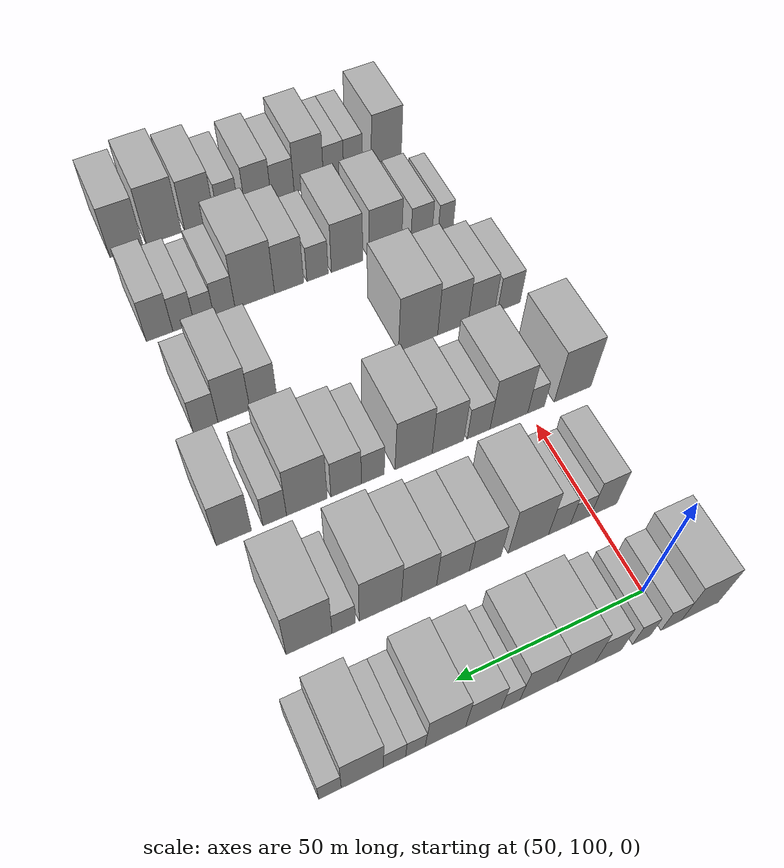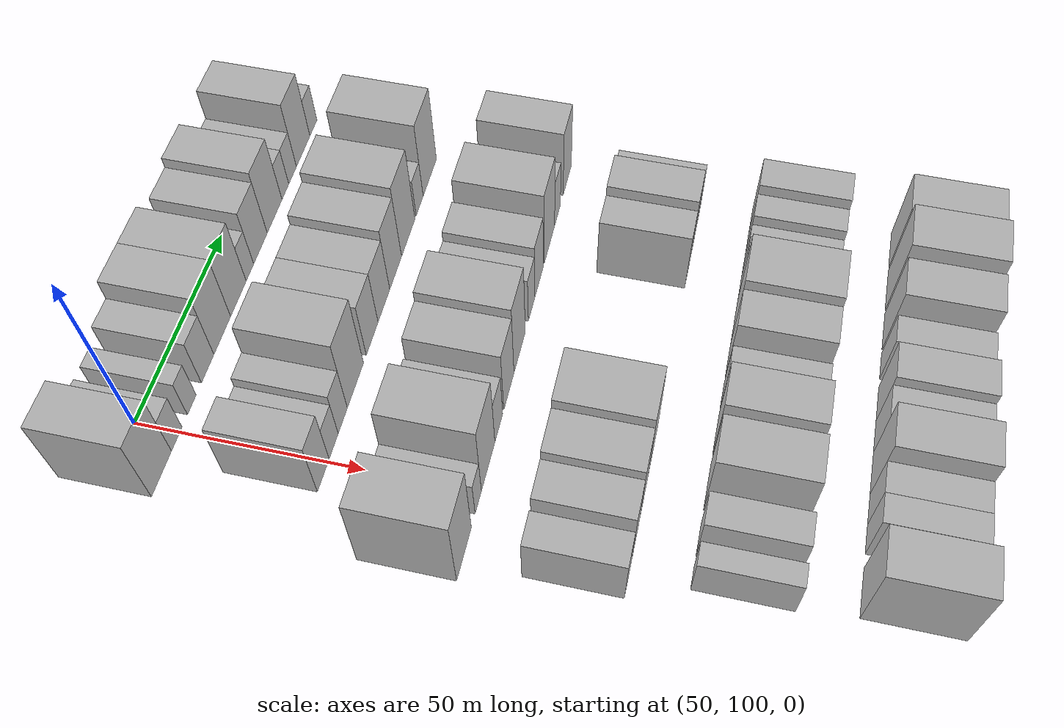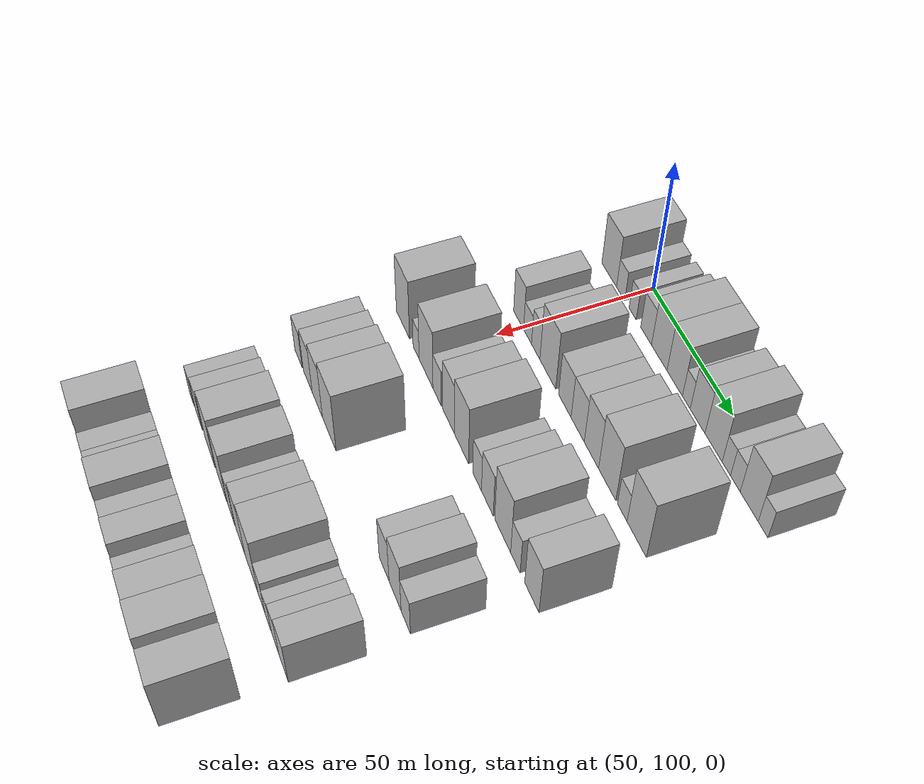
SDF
<sdf version="1.6">
 <world name="default">
  <model name="building_77">
   <static>1</static>
   <pose>50.0000 90.3313 0 0.000000 0.000000 0.000000</pose>
   <link name="link">
    <pose>0 0 10.50 0 0 0</pose>
    <collision name="collision"><geometry><box><size>20.0000 10.4453 21.0000</size></box></geometry></collision>
    <visual name="visual">
     <cast_shadows>0</cast_shadows>
     <geometry><box><size>20.0000 10.4453 21.0000</size></box></geometry>
     <material>
      <script>
       <uri>model://HANNAS_wall/materials/scripts</uri>
       <uri>model://HANNAS_wall/materials/textures</uri>
       <name>vrc/HANNAS_wall</name>
      </script>
     </material>
    </visual>
   </link>
  </model>
  <model name="building_78">
   <static>1</static>
   <pose>50.0000 98.3901 0 0.000000 0.000000 0.000000</pose>
   <link name="link">
    <pose>0 0 6.00 0 0 0</pose>
    <collision name="collision"><geometry><box><size>20.0000 5.6723 12.0000</size></box></geometry></collision>
    <visual name="visual">
     <cast_shadows>0</cast_shadows>
     <geometry><box><size>20.0000 5.6723 12.0000</size></box></geometry>
     <material>
      <script>
       <uri>model://HANNAS_wall/materials/scripts</uri>
       <uri>model://HANNAS_wall/materials/textures</uri>
       <name>vrc/HANNAS_wall</name>
      </script>
     </material>
    </visual>
   </link>
  </model>
  <model name="building_79">
   <static>1</static>
   <pose>50.0000 106.6499 0 0.000000 0.000000 0.000000</pose>
   <link name="link">
    <pose>0 0 6.00 0 0 0</pose>
    <collision name="collision"><geometry><box><size>20.0000 4.8474 12.0000</size></box></geometry></collision>
    <visual name="visual">
     <cast_shadows>0</cast_shadows>
     <geometry><box><size>20.0000 4.8474 12.0000</size></box></geometry>
     <material>
      <script>
       <uri>model://HANNAS_wall/materials/scripts</uri>
       <uri>model://HANNAS_wall/materials/textures</uri>
       <name>vrc/HANNAS_wall</name>
      </script>
     </material>
    </visual>
   </link>
  </model>
  <model name="building_80">
   <static>1</static>
   <pose>50.0000 115.6817 0 0.000000 0.000000 0.000000</pose>
   <link name="link">
    <pose>0 0 7.50 0 0 0</pose>
    <collision name="collision"><geometry><box><size>20.0000 7.2161 15.0000</size></box></geometry></collision>
    <visual name="visual">
     <cast_shadows>0</cast_shadows>
     <geometry><box><size>20.0000 7.2161 15.0000</size></box></geometry>
     <material>
      <script>
       <uri>model://HANNAS_wall/materials/scripts</uri>
       <uri>model://HANNAS_wall/materials/textures</uri>
       <name>vrc/HANNAS_wall</name>
      </script>
     </material>
    </visual>
   </link>
  </model>
  <model name="building_81">
   <static>1</static>
   <pose>50.0000 124.3143 0 0.000000 0.000000 0.000000</pose>
   <link name="link">
    <pose>0 0 10.50 0 0 0</pose>
    <collision name="collision"><geometry><box><size>20.0000 10.0491 21.0000</size></box></geometry></collision>
    <visual name="visual">
     <cast_shadows>0</cast_shadows>
     <geometry><box><size>20.0000 10.0491 21.0000</size></box></geometry>
     <material>
      <script>
       <uri>model://HANNAS_wall/materials/scripts</uri>
       <uri>model://HANNAS_wall/materials/textures</uri>
       <name>vrc/HANNAS_wall</name>
      </script>
     </material>
    </visual>
   </link>
  </model>
  <model name="building_82">
   <static>1</static>
   <pose>50.0000 134.2049 0 0.000000 0.000000 0.000000</pose>
   <link name="link">
    <pose>0 0 10.50 0 0 0</pose>
    <collision name="collision"><geometry><box><size>20.0000 9.7322 21.0000</size></box></geometry></collision>
    <visual name="visual">
     <cast_shadows>0</cast_shadows>
     <geometry><box><size>20.0000 9.7322 21.0000</size></box></geometry>
     <material>
      <script>
       <uri>model://HANNAS_wall/materials/scripts</uri>
       <uri>model://HANNAS_wall/materials/textures</uri>
       <name>vrc/HANNAS_wall</name>
      </script>
     </material>
    </visual>
   </link>
  </model>
  <model name="building_83">
   <static>1</static>
   <pose>50.0000 141.4858 0 0.000000 0.000000 0.000000</pose>
   <link name="link">
    <pose>0 0 6.00 0 0 0</pose>
    <collision name="collision"><geometry><box><size>20.0000 4.8296 12.0000</size></box></geometry></collision>
    <visual name="visual">
     <cast_shadows>0</cast_shadows>
     <geometry><box><size>20.0000 4.8296 12.0000</size></box></geometry>
     <material>
      <script>
       <uri>model://HANNAS_wall/materials/scripts</uri>
       <uri>model://HANNAS_wall/materials/textures</uri>
       <name>vrc/HANNAS_wall</name>
      </script>
     </material>
    </visual>
   </link>
  </model>
  <model name="building_84">
   <static>1</static>
   <pose>50.0000 148.3853 0 0.000000 0.000000 0.000000</pose>
   <link name="link">
    <pose>0 0 9.00 0 0 0</pose>
    <collision name="collision"><geometry><box><size>20.0000 8.9695 18.0000</size></box></geometry></collision>
    <visual name="visual">
     <cast_shadows>0</cast_shadows>
     <geometry><box><size>20.0000 8.9695 18.0000</size></box></geometry>
     <material>
      <script>
       <uri>model://HANNAS_wall/materials/scripts</uri>
       <uri>model://HANNAS_wall/materials/textures</uri>
       <name>vrc/HANNAS_wall</name>
      </script>
     </material>
    </visual>
   </link>
  </model>
  <model name="building_85">
   <static>1</static>
   <pose>50.0000 157.9243 0 0.000000 0.000000 0.000000</pose>
   <link name="link">
    <pose>0 0 10.50 0 0 0</pose>
    <collision name="collision"><geometry><box><size>20.0000 10.1083 21.0000</size></box></geometry></collision>
    <visual name="visual">
     <cast_shadows>0</cast_shadows>
     <geometry><box><size>20.0000 10.1083 21.0000</size></box></geometry>
     <material>
      <script>
       <uri>model://HANNAS_wall/materials/scripts</uri>
       <uri>model://HANNAS_wall/materials/textures</uri>
       <name>vrc/HANNAS_wall</name>
      </script>
     </material>
    </visual>
   </link>
  </model>
  <model name="building_86">
   <static>1</static>
   <pose>50.0000 165.3802 0 0.000000 0.000000 0.000000</pose>
   <link name="link">
    <pose>0 0 6.00 0 0 0</pose>
    <collision name="collision"><geometry><box><size>20.0000 4.8035 12.0000</size></box></geometry></collision>
    <visual name="visual">
     <cast_shadows>0</cast_shadows>
     <geometry><box><size>20.0000 4.8035 12.0000</size></box></geometry>
     <material>
      <script>
       <uri>model://HANNAS_wall/materials/scripts</uri>
       <uri>model://HANNAS_wall/materials/textures</uri>
       <name>vrc/HANNAS_wall</name>
      </script>
     </material>
    </visual>
   </link>
  </model>
  <model name="building_87">
   <static>1</static>
   <pose>50.0000 170.5307 0 0.000000 0.000000 0.000000</pose>
   <link name="link">
    <pose>0 0 6.00 0 0 0</pose>
    <collision name="collision"><geometry><box><size>20.0000 5.4974 12.0000</size></box></geometry></collision>
    <visual name="visual">
     <cast_shadows>0</cast_shadows>
     <geometry><box><size>20.0000 5.4974 12.0000</size></box></geometry>
     <material>
      <script>
       <uri>model://HANNAS_wall/materials/scripts</uri>
       <uri>model://HANNAS_wall/materials/textures</uri>
       <name>vrc/HANNAS_wall</name>
      </script>
     </material>
    </visual>
   </link>
  </model>
  <model name="building_88">
   <static>1</static>
   <pose>50.0000 178.2708 0 0.000000 0.000000 0.000000</pose>
   <link name="link">
    <pose>0 0 10.50 0 0 0</pose>
    <collision name="collision"><geometry><box><size>20.0000 9.9829 21.0000</size></box></geometry></collision>
    <visual name="visual">
     <cast_shadows>0</cast_shadows>
     <geometry><box><size>20.0000 9.9829 21.0000</size></box></geometry>
     <material>
      <script>
       <uri>model://HANNAS_wall/materials/scripts</uri>
       <uri>model://HANNAS_wall/materials/textures</uri>
       <name>vrc/HANNAS_wall</name>
      </script>
     </material>
    </visual>
   </link>
  </model>
  <model name="building_89">
   <static>1</static>
   <pose>50.0000 185.9252 0 0.000000 0.000000 0.000000</pose>
   <link name="link">
    <pose>0 0 6.00 0 0 0</pose>
    <collision name="collision"><geometry><box><size>20.0000 5.3258 12.0000</size></box></geometry></collision>
    <visual name="visual">
     <cast_shadows>0</cast_shadows>
     <geometry><box><size>20.0000 5.3258 12.0000</size></box></geometry>
     <material>
      <script>
       <uri>model://HANNAS_wall/materials/scripts</uri>
       <uri>model://HANNAS_wall/materials/textures</uri>
       <name>vrc/HANNAS_wall</name>
      </script>
     </material>
    </visual>
   </link>
  </model>
  <model name="building_206">
   <static>1</static>
   <pose>82.0000 97.0718 0 0.000000 0.000000 0.000000</pose>
   <link name="link">
    <pose>0 0 9.00 0 0 0</pose>
    <collision name="collision"><geometry><box><size>20.0000 7.5172 18.0000</size></box></geometry></collision>
    <visual name="visual">
     <cast_shadows>0</cast_shadows>
     <geometry><box><size>20.0000 7.5172 18.0000</size></box></geometry>
     <material>
      <script>
       <uri>model://HANNAS_wall/materials/scripts</uri>
       <uri>model://HANNAS_wall/materials/textures</uri>
       <name>vrc/HANNAS_wall</name>
      </script>
     </material>
    </visual>
   </link>
  </model>
  <model name="building_207">
   <static>1</static>
   <pose>82.0000 103.8005 0 0.000000 0.000000 0.000000</pose>
   <link name="link">
    <pose>0 0 6.00 0 0 0</pose>
    <collision name="collision"><geometry><box><size>20.0000 5.9404 12.0000</size></box></geometry></collision>
    <visual name="visual">
     <cast_shadows>0</cast_shadows>
     <geometry><box><size>20.0000 5.9404 12.0000</size></box></geometry>
     <material>
      <script>
       <uri>model://HANNAS_wall/materials/scripts</uri>
       <uri>model://HANNAS_wall/materials/textures</uri>
       <name>vrc/HANNAS_wall</name>
      </script>
     </material>
    </visual>
   </link>
  </model>
  <model name="building_208">
   <static>1</static>
   <pose>82.0000 109.8524 0 0.000000 0.000000 0.000000</pose>
   <link name="link">
    <pose>0 0 7.50 0 0 0</pose>
    <collision name="collision"><geometry><box><size>20.0000 6.1634 15.0000</size></box></geometry></collision>
    <visual name="visual">
     <cast_shadows>0</cast_shadows>
     <geometry><box><size>20.0000 6.1634 15.0000</size></box></geometry>
     <material>
      <script>
       <uri>model://HANNAS_wall/materials/scripts</uri>
       <uri>model://HANNAS_wall/materials/textures</uri>
       <name>vrc/HANNAS_wall</name>
      </script>
     </material>
    </visual>
   </link>
  </model>
  <model name="building_209">
   <static>1</static>
   <pose>82.0000 118.5898 0 0.000000 0.000000 0.000000</pose>
   <link name="link">
    <pose>0 0 12.00 0 0 0</pose>
    <collision name="collision"><geometry><box><size>20.0000 11.3113 24.0000</size></box></geometry></collision>
    <visual name="visual">
     <cast_shadows>0</cast_shadows>
     <geometry><box><size>20.0000 11.3113 24.0000</size></box></geometry>
     <material>
      <script>
       <uri>model://HANNAS_wall/materials/scripts</uri>
       <uri>model://HANNAS_wall/materials/textures</uri>
       <name>vrc/HANNAS_wall</name>
      </script>
     </material>
    </visual>
   </link>
  </model>
  <model name="building_210">
   <static>1</static>
   <pose>82.0000 130.5732 0 0.000000 0.000000 0.000000</pose>
   <link name="link">
    <pose>0 0 9.00 0 0 0</pose>
    <collision name="collision"><geometry><box><size>20.0000 8.6554 18.0000</size></box></geometry></collision>
    <visual name="visual">
     <cast_shadows>0</cast_shadows>
     <geometry><box><size>20.0000 8.6554 18.0000</size></box></geometry>
     <material>
      <script>
       <uri>model://HANNAS_wall/materials/scripts</uri>
       <uri>model://HANNAS_wall/materials/textures</uri>
       <name>vrc/HANNAS_wall</name>
      </script>
     </material>
    </visual>
   </link>
  </model>
  <model name="building_211">
   <static>1</static>
   <pose>82.0000 139.3551 0 0.000000 0.000000 0.000000</pose>
   <link name="link">
    <pose>0 0 9.00 0 0 0</pose>
    <collision name="collision"><geometry><box><size>20.0000 8.9084 18.0000</size></box></geometry></collision>
    <visual name="visual">
     <cast_shadows>0</cast_shadows>
     <geometry><box><size>20.0000 8.9084 18.0000</size></box></geometry>
     <material>
      <script>
       <uri>model://HANNAS_wall/materials/scripts</uri>
       <uri>model://HANNAS_wall/materials/textures</uri>
       <name>vrc/HANNAS_wall</name>
      </script>
     </material>
    </visual>
   </link>
  </model>
  <model name="building_212">
   <static>1</static>
   <pose>82.0000 148.4932 0 0.000000 0.000000 0.000000</pose>
   <link name="link">
    <pose>0 0 10.50 0 0 0</pose>
    <collision name="collision"><geometry><box><size>20.0000 9.3679 21.0000</size></box></geometry></collision>
    <visual name="visual">
     <cast_shadows>0</cast_shadows>
     <geometry><box><size>20.0000 9.3679 21.0000</size></box></geometry>
     <material>
      <script>
       <uri>model://HANNAS_wall/materials/scripts</uri>
       <uri>model://HANNAS_wall/materials/textures</uri>
       <name>vrc/HANNAS_wall</name>
      </script>
     </material>
    </visual>
   </link>
  </model>
  <model name="building_213">
   <static>1</static>
   <pose>82.0000 158.6790 0 0.000000 0.000000 0.000000</pose>
   <link name="link">
    <pose>0 0 12.00 0 0 0</pose>
    <collision name="collision"><geometry><box><size>20.0000 11.0038 24.0000</size></box></geometry></collision>
    <visual name="visual">
     <cast_shadows>0</cast_shadows>
     <geometry><box><size>20.0000 11.0038 24.0000</size></box></geometry>
     <material>
      <script>
       <uri>model://HANNAS_wall/materials/scripts</uri>
       <uri>model://HANNAS_wall/materials/textures</uri>
       <name>vrc/HANNAS_wall</name>
      </script>
     </material>
    </visual>
   </link>
  </model>
  <model name="building_214">
   <static>1</static>
   <pose>82.0000 168.1587 0 0.000000 0.000000 0.000000</pose>
   <link name="link">
    <pose>0 0 6.00 0 0 0</pose>
    <collision name="collision"><geometry><box><size>20.0000 5.9555 12.0000</size></box></geometry></collision>
    <visual name="visual">
     <cast_shadows>0</cast_shadows>
     <geometry><box><size>20.0000 5.9555 12.0000</size></box></geometry>
     <material>
      <script>
       <uri>model://HANNAS_wall/materials/scripts</uri>
       <uri>model://HANNAS_wall/materials/textures</uri>
       <name>vrc/HANNAS_wall</name>
      </script>
     </material>
    </visual>
   </link>
  </model>
  <model name="building_215">
   <static>1</static>
   <pose>82.0000 176.9560 0 0.000000 0.000000 0.000000</pose>
   <link name="link">
    <pose>0 0 12.00 0 0 0</pose>
    <collision name="collision"><geometry><box><size>20.0000 11.6392 24.0000</size></box></geometry></collision>
    <visual name="visual">
     <cast_shadows>0</cast_shadows>
     <geometry><box><size>20.0000 11.6392 24.0000</size></box></geometry>
     <material>
      <script>
       <uri>model://HANNAS_wall/materials/scripts</uri>
       <uri>model://HANNAS_wall/materials/textures</uri>
       <name>vrc/HANNAS_wall</name>
      </script>
     </material>
    </visual>
   </link>
  </model>
  <model name="building_332">
   <static>1</static>
   <pose>114.0000 86.9081 0 0.000000 0.000000 0.000000</pose>
   <link name="link">
    <pose>0 0 12.00 0 0 0</pose>
    <collision name="collision"><geometry><box><size>20.0000 11.2672 24.0000</size></box></geometry></collision>
    <visual name="visual">
     <cast_shadows>0</cast_shadows>
     <geometry><box><size>20.0000 11.2672 24.0000</size></box></geometry>
     <material>
      <script>
       <uri>model://HANNAS_wall/materials/scripts</uri>
       <uri>model://HANNAS_wall/materials/textures</uri>
       <name>vrc/HANNAS_wall</name>
      </script>
     </material>
    </visual>
   </link>
  </model>
  <model name="building_333">
   <static>1</static>
   <pose>114.0000 98.0637 0 0.000000 0.000000 0.000000</pose>
   <link name="link">
    <pose>0 0 6.00 0 0 0</pose>
    <collision name="collision"><geometry><box><size>20.0000 5.0442 12.0000</size></box></geometry></collision>
    <visual name="visual">
     <cast_shadows>0</cast_shadows>
     <geometry><box><size>20.0000 5.0442 12.0000</size></box></geometry>
     <material>
      <script>
       <uri>model://HANNAS_wall/materials/scripts</uri>
       <uri>model://HANNAS_wall/materials/textures</uri>
       <name>vrc/HANNAS_wall</name>
      </script>
     </material>
    </visual>
   </link>
  </model>
  <model name="building_334">
   <static>1</static>
   <pose>114.0000 106.2054 0 0.000000 0.000000 0.000000</pose>
   <link name="link">
    <pose>0 0 12.00 0 0 0</pose>
    <collision name="collision"><geometry><box><size>20.0000 11.2392 24.0000</size></box></geometry></collision>
    <visual name="visual">
     <cast_shadows>0</cast_shadows>
     <geometry><box><size>20.0000 11.2392 24.0000</size></box></geometry>
     <material>
      <script>
       <uri>model://HANNAS_wall/materials/scripts</uri>
       <uri>model://HANNAS_wall/materials/textures</uri>
       <name>vrc/HANNAS_wall</name>
      </script>
     </material>
    </visual>
   </link>
  </model>
  <model name="building_335">
   <static>1</static>
   <pose>114.0000 115.1809 0 0.000000 0.000000 0.000000</pose>
   <link name="link">
    <pose>0 0 7.50 0 0 0</pose>
    <collision name="collision"><geometry><box><size>20.0000 6.7119 15.0000</size></box></geometry></collision>
    <visual name="visual">
     <cast_shadows>0</cast_shadows>
     <geometry><box><size>20.0000 6.7119 15.0000</size></box></geometry>
     <material>
      <script>
       <uri>model://HANNAS_wall/materials/scripts</uri>
       <uri>model://HANNAS_wall/materials/textures</uri>
       <name>vrc/HANNAS_wall</name>
      </script>
     </material>
    </visual>
   </link>
  </model>
  <model name="building_336">
   <static>1</static>
   <pose>114.0000 124.1312 0 0.000000 0.000000 0.000000</pose>
   <link name="link">
    <pose>0 0 10.50 0 0 0</pose>
    <collision name="collision"><geometry><box><size>20.0000 9.1886 21.0000</size></box></geometry></collision>
    <visual name="visual">
     <cast_shadows>0</cast_shadows>
     <geometry><box><size>20.0000 9.1886 21.0000</size></box></geometry>
     <material>
      <script>
       <uri>model://HANNAS_wall/materials/scripts</uri>
       <uri>model://HANNAS_wall/materials/textures</uri>
       <name>vrc/HANNAS_wall</name>
      </script>
     </material>
    </visual>
   </link>
  </model>
  <model name="building_337">
   <static>1</static>
   <pose>114.0000 134.0255 0 0.000000 0.000000 0.000000</pose>
   <link name="link">
    <pose>0 0 12.00 0 0 0</pose>
    <collision name="collision"><geometry><box><size>20.0000 10.6000 24.0000</size></box></geometry></collision>
    <visual name="visual">
     <cast_shadows>0</cast_shadows>
     <geometry><box><size>20.0000 10.6000 24.0000</size></box></geometry>
     <material>
      <script>
       <uri>model://HANNAS_wall/materials/scripts</uri>
       <uri>model://HANNAS_wall/materials/textures</uri>
       <name>vrc/HANNAS_wall</name>
      </script>
     </material>
    </visual>
   </link>
  </model>
  <model name="building_338">
   <static>1</static>
   <pose>114.0000 145.5345 0 0.000000 0.000000 0.000000</pose>
   <link name="link">
    <pose>0 0 7.50 0 0 0</pose>
    <collision name="collision"><geometry><box><size>20.0000 6.4181 15.0000</size></box></geometry></collision>
    <visual name="visual">
     <cast_shadows>0</cast_shadows>
     <geometry><box><size>20.0000 6.4181 15.0000</size></box></geometry>
     <material>
      <script>
       <uri>model://HANNAS_wall/materials/scripts</uri>
       <uri>model://HANNAS_wall/materials/textures</uri>
       <name>vrc/HANNAS_wall</name>
      </script>
     </material>
    </visual>
   </link>
  </model>
  <model name="building_339">
   <static>1</static>
   <pose>114.0000 152.9391 0 0.000000 0.000000 0.000000</pose>
   <link name="link">
    <pose>0 0 9.00 0 0 0</pose>
    <collision name="collision"><geometry><box><size>20.0000 8.3911 18.0000</size></box></geometry></collision>
    <visual name="visual">
     <cast_shadows>0</cast_shadows>
     <geometry><box><size>20.0000 8.3911 18.0000</size></box></geometry>
     <material>
      <script>
       <uri>model://HANNAS_wall/materials/scripts</uri>
       <uri>model://HANNAS_wall/materials/textures</uri>
       <name>vrc/HANNAS_wall</name>
      </script>
     </material>
    </visual>
   </link>
  </model>
  <model name="building_340">
   <static>1</static>
   <pose>114.0000 163.6487 0 0.000000 0.000000 0.000000</pose>
   <link name="link">
    <pose>0 0 12.00 0 0 0</pose>
    <collision name="collision"><geometry><box><size>20.0000 11.0280 24.0000</size></box></geometry></collision>
    <visual name="visual">
     <cast_shadows>0</cast_shadows>
     <geometry><box><size>20.0000 11.0280 24.0000</size></box></geometry>
     <material>
      <script>
       <uri>model://HANNAS_wall/materials/scripts</uri>
       <uri>model://HANNAS_wall/materials/textures</uri>
       <name>vrc/HANNAS_wall</name>
      </script>
     </material>
    </visual>
   </link>
  </model>
  <model name="building_341">
   <static>1</static>
   <pose>114.0000 172.3379 0 0.000000 0.000000 0.000000</pose>
   <link name="link">
    <pose>0 0 7.50 0 0 0</pose>
    <collision name="collision"><geometry><box><size>20.0000 6.3503 15.0000</size></box></geometry></collision>
    <visual name="visual">
     <cast_shadows>0</cast_shadows>
     <geometry><box><size>20.0000 6.3503 15.0000</size></box></geometry>
     <material>
      <script>
       <uri>model://HANNAS_wall/materials/scripts</uri>
       <uri>model://HANNAS_wall/materials/textures</uri>
       <name>vrc/HANNAS_wall</name>
      </script>
     </material>
    </visual>
   </link>
  </model>
  <model name="building_342">
   <static>1</static>
   <pose>114.0000 183.1485 0 0.000000 0.000000 0.000000</pose>
   <link name="link">
    <pose>0 0 10.50 0 0 0</pose>
    <collision name="collision"><geometry><box><size>20.0000 9.2711 21.0000</size></box></geometry></collision>
    <visual name="visual">
     <cast_shadows>0</cast_shadows>
     <geometry><box><size>20.0000 9.2711 21.0000</size></box></geometry>
     <material>
      <script>
       <uri>model://HANNAS_wall/materials/scripts</uri>
       <uri>model://HANNAS_wall/materials/textures</uri>
       <name>vrc/HANNAS_wall</name>
      </script>
     </material>
    </visual>
   </link>
  </model>
  <model name="building_447">
   <static>1</static>
   <pose>146.0000 88.4126 0 0.000000 0.000000 0.000000</pose>
   <link name="link">
    <pose>0 0 7.50 0 0 0</pose>
    <collision name="collision"><geometry><box><size>20.0000 7.1705 15.0000</size></box></geometry></collision>
    <visual name="visual">
     <cast_shadows>0</cast_shadows>
     <geometry><box><size>20.0000 7.1705 15.0000</size></box></geometry>
     <material>
      <script>
       <uri>model://HANNAS_wall/materials/scripts</uri>
       <uri>model://HANNAS_wall/materials/textures</uri>
       <name>vrc/HANNAS_wall</name>
      </script>
     </material>
    </visual>
   </link>
  </model>
  <model name="building_448">
   <static>1</static>
   <pose>146.0000 97.1420 0 0.000000 0.000000 0.000000</pose>
   <link name="link">
    <pose>0 0 9.00 0 0 0</pose>
    <collision name="collision"><geometry><box><size>20.0000 8.2884 18.0000</size></box></geometry></collision>
    <visual name="visual">
     <cast_shadows>0</cast_shadows>
     <geometry><box><size>20.0000 8.2884 18.0000</size></box></geometry>
     <material>
      <script>
       <uri>model://HANNAS_wall/materials/scripts</uri>
       <uri>model://HANNAS_wall/materials/textures</uri>
       <name>vrc/HANNAS_wall</name>
      </script>
     </material>
    </visual>
   </link>
  </model>
  <model name="building_449">
   <static>1</static>
   <pose>146.0000 106.0185 0 0.000000 0.000000 0.000000</pose>
   <link name="link">
    <pose>0 0 10.50 0 0 0</pose>
    <collision name="collision"><geometry><box><size>20.0000 9.4645 21.0000</size></box></geometry></collision>
    <visual name="visual">
     <cast_shadows>0</cast_shadows>
     <geometry><box><size>20.0000 9.4645 21.0000</size></box></geometry>
     <material>
      <script>
       <uri>model://HANNAS_wall/materials/scripts</uri>
       <uri>model://HANNAS_wall/materials/textures</uri>
       <name>vrc/HANNAS_wall</name>
      </script>
     </material>
    </visual>
   </link>
  </model>
  <model name="building_450">
   <static>1</static>
   <pose>146.0000 116.7327 0 0.000000 0.000000 0.000000</pose>
   <link name="link">
    <pose>0 0 12.00 0 0 0</pose>
    <collision name="collision"><geometry><box><size>20.0000 11.9639 24.0000</size></box></geometry></collision>
    <visual name="visual">
     <cast_shadows>0</cast_shadows>
     <geometry><box><size>20.0000 11.9639 24.0000</size></box></geometry>
     <material>
      <script>
       <uri>model://HANNAS_wall/materials/scripts</uri>
       <uri>model://HANNAS_wall/materials/textures</uri>
       <name>vrc/HANNAS_wall</name>
      </script>
     </material>
    </visual>
   </link>
  </model>
  <model name="building_451">
   <static>1</static>
   <pose>146.0000 162.2679 0 0.000000 0.000000 0.000000</pose>
   <link name="link">
    <pose>0 0 9.00 0 0 0</pose>
    <collision name="collision"><geometry><box><size>20.0000 7.7021 18.0000</size></box></geometry></collision>
    <visual name="visual">
     <cast_shadows>0</cast_shadows>
     <geometry><box><size>20.0000 7.7021 18.0000</size></box></geometry>
     <material>
      <script>
       <uri>model://HANNAS_wall/materials/scripts</uri>
       <uri>model://HANNAS_wall/materials/textures</uri>
       <name>vrc/HANNAS_wall</name>
      </script>
     </material>
    </visual>
   </link>
  </model>
  <model name="building_452">
   <static>1</static>
   <pose>146.0000 170.6285 0 0.000000 0.000000 0.000000</pose>
   <link name="link">
    <pose>0 0 10.50 0 0 0</pose>
    <collision name="collision"><geometry><box><size>20.0000 9.0191 21.0000</size></box></geometry></collision>
    <visual name="visual">
     <cast_shadows>0</cast_shadows>
     <geometry><box><size>20.0000 9.0191 21.0000</size></box></geometry>
     <material>
      <script>
       <uri>model://HANNAS_wall/materials/scripts</uri>
       <uri>model://HANNAS_wall/materials/textures</uri>
       <name>vrc/HANNAS_wall</name>
      </script>
     </material>
    </visual>
   </link>
  </model>
  <model name="building_453">
   <static>1</static>
   <pose>146.0000 178.5805 0 0.000000 0.000000 0.000000</pose>
   <link name="link">
    <pose>0 0 7.50 0 0 0</pose>
    <collision name="collision"><geometry><box><size>20.0000 6.8849 15.0000</size></box></geometry></collision>
    <visual name="visual">
     <cast_shadows>0</cast_shadows>
     <geometry><box><size>20.0000 6.8849 15.0000</size></box></geometry>
     <material>
      <script>
       <uri>model://HANNAS_wall/materials/scripts</uri>
       <uri>model://HANNAS_wall/materials/textures</uri>
       <name>vrc/HANNAS_wall</name>
      </script>
     </material>
    </visual>
   </link>
  </model>
  <model name="building_569">
   <static>1</static>
   <pose>178.0000 91.7401 0 0.000000 0.000000 0.000000</pose>
   <link name="link">
    <pose>0 0 6.00 0 0 0</pose>
    <collision name="collision"><geometry><box><size>20.0000 4.9276 12.0000</size></box></geometry></collision>
    <visual name="visual">
     <cast_shadows>0</cast_shadows>
     <geometry><box><size>20.0000 4.9276 12.0000</size></box></geometry>
     <material>
      <script>
       <uri>model://HANNAS_wall/materials/scripts</uri>
       <uri>model://HANNAS_wall/materials/textures</uri>
       <name>vrc/HANNAS_wall</name>
      </script>
     </material>
    </visual>
   </link>
  </model>
  <model name="building_570">
   <static>1</static>
   <pose>178.0000 99.6851 0 0.000000 0.000000 0.000000</pose>
   <link name="link">
    <pose>0 0 7.50 0 0 0</pose>
    <collision name="collision"><geometry><box><size>20.0000 6.9624 15.0000</size></box></geometry></collision>
    <visual name="visual">
     <cast_shadows>0</cast_shadows>
     <geometry><box><size>20.0000 6.9624 15.0000</size></box></geometry>
     <material>
      <script>
       <uri>model://HANNAS_wall/materials/scripts</uri>
       <uri>model://HANNAS_wall/materials/textures</uri>
       <name>vrc/HANNAS_wall</name>
      </script>
     </material>
    </visual>
   </link>
  </model>
  <model name="building_571">
   <static>1</static>
   <pose>178.0000 111.3668 0 0.000000 0.000000 0.000000</pose>
   <link name="link">
    <pose>0 0 10.50 0 0 0</pose>
    <collision name="collision"><geometry><box><size>20.0000 10.4011 21.0000</size></box></geometry></collision>
    <visual name="visual">
     <cast_shadows>0</cast_shadows>
     <geometry><box><size>20.0000 10.4011 21.0000</size></box></geometry>
     <material>
      <script>
       <uri>model://HANNAS_wall/materials/scripts</uri>
       <uri>model://HANNAS_wall/materials/textures</uri>
       <name>vrc/HANNAS_wall</name>
      </script>
     </material>
    </visual>
   </link>
  </model>
  <model name="building_572">
   <static>1</static>
   <pose>178.0000 123.4785 0 0.000000 0.000000 0.000000</pose>
   <link name="link">
    <pose>0 0 10.50 0 0 0</pose>
    <collision name="collision"><geometry><box><size>20.0000 9.8222 21.0000</size></box></geometry></collision>
    <visual name="visual">
     <cast_shadows>0</cast_shadows>
     <geometry><box><size>20.0000 9.8222 21.0000</size></box></geometry>
     <material>
      <script>
       <uri>model://HANNAS_wall/materials/scripts</uri>
       <uri>model://HANNAS_wall/materials/textures</uri>
       <name>vrc/HANNAS_wall</name>
      </script>
     </material>
    </visual>
   </link>
  </model>
  <model name="building_573">
   <static>1</static>
   <pose>178.0000 132.6878 0 0.000000 0.000000 0.000000</pose>
   <link name="link">
    <pose>0 0 7.50 0 0 0</pose>
    <collision name="collision"><geometry><box><size>20.0000 6.5964 15.0000</size></box></geometry></collision>
    <visual name="visual">
     <cast_shadows>0</cast_shadows>
     <geometry><box><size>20.0000 6.5964 15.0000</size></box></geometry>
     <material>
      <script>
       <uri>model://HANNAS_wall/materials/scripts</uri>
       <uri>model://HANNAS_wall/materials/textures</uri>
       <name>vrc/HANNAS_wall</name>
      </script>
     </material>
    </visual>
   </link>
  </model>
  <model name="building_574">
   <static>1</static>
   <pose>178.0000 141.4382 0 0.000000 0.000000 0.000000</pose>
   <link name="link">
    <pose>0 0 10.50 0 0 0</pose>
    <collision name="collision"><geometry><box><size>20.0000 8.9043 21.0000</size></box></geometry></collision>
    <visual name="visual">
     <cast_shadows>0</cast_shadows>
     <geometry><box><size>20.0000 8.9043 21.0000</size></box></geometry>
     <material>
      <script>
       <uri>model://HANNAS_wall/materials/scripts</uri>
       <uri>model://HANNAS_wall/materials/textures</uri>
       <name>vrc/HANNAS_wall</name>
      </script>
     </material>
    </visual>
   </link>
  </model>
  <model name="building_575">
   <static>1</static>
   <pose>178.0000 151.8534 0 0.000000 0.000000 0.000000</pose>
   <link name="link">
    <pose>0 0 12.00 0 0 0</pose>
    <collision name="collision"><geometry><box><size>20.0000 11.9261 24.0000</size></box></geometry></collision>
    <visual name="visual">
     <cast_shadows>0</cast_shadows>
     <geometry><box><size>20.0000 11.9261 24.0000</size></box></geometry>
     <material>
      <script>
       <uri>model://HANNAS_wall/materials/scripts</uri>
       <uri>model://HANNAS_wall/materials/textures</uri>
       <name>vrc/HANNAS_wall</name>
      </script>
     </material>
    </visual>
   </link>
  </model>
  <model name="building_576">
   <static>1</static>
   <pose>178.0000 160.9690 0 0.000000 0.000000 0.000000</pose>
   <link name="link">
    <pose>0 0 7.50 0 0 0</pose>
    <collision name="collision"><geometry><box><size>20.0000 6.3051 15.0000</size></box></geometry></collision>
    <visual name="visual">
     <cast_shadows>0</cast_shadows>
     <geometry><box><size>20.0000 6.3051 15.0000</size></box></geometry>
     <material>
      <script>
       <uri>model://HANNAS_wall/materials/scripts</uri>
       <uri>model://HANNAS_wall/materials/textures</uri>
       <name>vrc/HANNAS_wall</name>
      </script>
     </material>
    </visual>
   </link>
  </model>
  <model name="building_577">
   <static>1</static>
   <pose>178.0000 167.0183 0 0.000000 0.000000 0.000000</pose>
   <link name="link">
    <pose>0 0 6.00 0 0 0</pose>
    <collision name="collision"><geometry><box><size>20.0000 5.7934 12.0000</size></box></geometry></collision>
    <visual name="visual">
     <cast_shadows>0</cast_shadows>
     <geometry><box><size>20.0000 5.7934 12.0000</size></box></geometry>
     <material>
      <script>
       <uri>model://HANNAS_wall/materials/scripts</uri>
       <uri>model://HANNAS_wall/materials/textures</uri>
       <name>vrc/HANNAS_wall</name>
      </script>
     </material>
    </visual>
   </link>
  </model>
  <model name="building_578">
   <static>1</static>
   <pose>178.0000 173.0306 0 0.000000 0.000000 0.000000</pose>
   <link name="link">
    <pose>0 0 7.50 0 0 0</pose>
    <collision name="collision"><geometry><box><size>20.0000 6.2312 15.0000</size></box></geometry></collision>
    <visual name="visual">
     <cast_shadows>0</cast_shadows>
     <geometry><box><size>20.0000 6.2312 15.0000</size></box></geometry>
     <material>
      <script>
       <uri>model://HANNAS_wall/materials/scripts</uri>
       <uri>model://HANNAS_wall/materials/textures</uri>
       <name>vrc/HANNAS_wall</name>
      </script>
     </material>
    </visual>
   </link>
  </model>
  <model name="building_579">
   <static>1</static>
   <pose>178.0000 180.0033 0 0.000000 0.000000 0.000000</pose>
   <link name="link">
    <pose>0 0 9.00 0 0 0</pose>
    <collision name="collision"><geometry><box><size>20.0000 7.7144 18.0000</size></box></geometry></collision>
    <visual name="visual">
     <cast_shadows>0</cast_shadows>
     <geometry><box><size>20.0000 7.7144 18.0000</size></box></geometry>
     <material>
      <script>
       <uri>model://HANNAS_wall/materials/scripts</uri>
       <uri>model://HANNAS_wall/materials/textures</uri>
       <name>vrc/HANNAS_wall</name>
      </script>
     </material>
    </visual>
   </link>
  </model>
  <model name="building_694">
   <static>1</static>
   <pose>210.0000 95.6633 0 0.000000 0.000000 0.000000</pose>
   <link name="link">
    <pose>0 0 10.50 0 0 0</pose>
    <collision name="collision"><geometry><box><size>20.0000 10.1783 21.0000</size></box></geometry></collision>
    <visual name="visual">
     <cast_shadows>0</cast_shadows>
     <geometry><box><size>20.0000 10.1783 21.0000</size></box></geometry>
     <material>
      <script>
       <uri>model://HANNAS_wall/materials/scripts</uri>
       <uri>model://HANNAS_wall/materials/textures</uri>
       <name>vrc/HANNAS_wall</name>
      </script>
     </material>
    </visual>
   </link>
  </model>
  <model name="building_695">
   <static>1</static>
   <pose>210.0000 106.8811 0 0.000000 0.000000 0.000000</pose>
   <link name="link">
    <pose>0 0 7.50 0 0 0</pose>
    <collision name="collision"><geometry><box><size>20.0000 6.2572 15.0000</size></box></geometry></collision>
    <visual name="visual">
     <cast_shadows>0</cast_shadows>
     <geometry><box><size>20.0000 6.2572 15.0000</size></box></geometry>
     <material>
      <script>
       <uri>model://HANNAS_wall/materials/scripts</uri>
       <uri>model://HANNAS_wall/materials/textures</uri>
       <name>vrc/HANNAS_wall</name>
      </script>
     </material>
    </visual>
   </link>
  </model>
  <model name="building_696">
   <static>1</static>
   <pose>210.0000 113.3355 0 0.000000 0.000000 0.000000</pose>
   <link name="link">
    <pose>0 0 7.50 0 0 0</pose>
    <collision name="collision"><geometry><box><size>20.0000 6.6515 15.0000</size></box></geometry></collision>
    <visual name="visual">
     <cast_shadows>0</cast_shadows>
     <geometry><box><size>20.0000 6.6515 15.0000</size></box></geometry>
     <material>
      <script>
       <uri>model://HANNAS_wall/materials/scripts</uri>
       <uri>model://HANNAS_wall/materials/textures</uri>
       <name>vrc/HANNAS_wall</name>
      </script>
     </material>
    </visual>
   </link>
  </model>
  <model name="building_697">
   <static>1</static>
   <pose>210.0000 121.4853 0 0.000000 0.000000 0.000000</pose>
   <link name="link">
    <pose>0 0 10.50 0 0 0</pose>
    <collision name="collision"><geometry><box><size>20.0000 9.6481 21.0000</size></box></geometry></collision>
    <visual name="visual">
     <cast_shadows>0</cast_shadows>
     <geometry><box><size>20.0000 9.6481 21.0000</size></box></geometry>
     <material>
      <script>
       <uri>model://HANNAS_wall/materials/scripts</uri>
       <uri>model://HANNAS_wall/materials/textures</uri>
       <name>vrc/HANNAS_wall</name>
      </script>
     </material>
    </visual>
   </link>
  </model>
  <model name="building_698">
   <static>1</static>
   <pose>210.0000 130.0188 0 0.000000 0.000000 0.000000</pose>
   <link name="link">
    <pose>0 0 7.50 0 0 0</pose>
    <collision name="collision"><geometry><box><size>20.0000 7.4190 15.0000</size></box></geometry></collision>
    <visual name="visual">
     <cast_shadows>0</cast_shadows>
     <geometry><box><size>20.0000 7.4190 15.0000</size></box></geometry>
     <material>
      <script>
       <uri>model://HANNAS_wall/materials/scripts</uri>
       <uri>model://HANNAS_wall/materials/textures</uri>
       <name>vrc/HANNAS_wall</name>
      </script>
     </material>
    </visual>
   </link>
  </model>
  <model name="building_699">
   <static>1</static>
   <pose>210.0000 137.9049 0 0.000000 0.000000 0.000000</pose>
   <link name="link">
    <pose>0 0 9.00 0 0 0</pose>
    <collision name="collision"><geometry><box><size>20.0000 8.3531 18.0000</size></box></geometry></collision>
    <visual name="visual">
     <cast_shadows>0</cast_shadows>
     <geometry><box><size>20.0000 8.3531 18.0000</size></box></geometry>
     <material>
      <script>
       <uri>model://HANNAS_wall/materials/scripts</uri>
       <uri>model://HANNAS_wall/materials/textures</uri>
       <name>vrc/HANNAS_wall</name>
      </script>
     </material>
    </visual>
   </link>
  </model>
  <model name="building_700">
   <static>1</static>
   <pose>210.0000 147.3625 0 0.000000 0.000000 0.000000</pose>
   <link name="link">
    <pose>0 0 7.50 0 0 0</pose>
    <collision name="collision"><geometry><box><size>20.0000 6.5619 15.0000</size></box></geometry></collision>
    <visual name="visual">
     <cast_shadows>0</cast_shadows>
     <geometry><box><size>20.0000 6.5619 15.0000</size></box></geometry>
     <material>
      <script>
       <uri>model://HANNAS_wall/materials/scripts</uri>
       <uri>model://HANNAS_wall/materials/textures</uri>
       <name>vrc/HANNAS_wall</name>
      </script>
     </material>
    </visual>
   </link>
  </model>
  <model name="building_701">
   <static>1</static>
   <pose>210.0000 156.3603 0 0.000000 0.000000 0.000000</pose>
   <link name="link">
    <pose>0 0 10.50 0 0 0</pose>
    <collision name="collision"><geometry><box><size>20.0000 9.4338 21.0000</size></box></geometry></collision>
    <visual name="visual">
     <cast_shadows>0</cast_shadows>
     <geometry><box><size>20.0000 9.4338 21.0000</size></box></geometry>
     <material>
      <script>
       <uri>model://HANNAS_wall/materials/scripts</uri>
       <uri>model://HANNAS_wall/materials/textures</uri>
       <name>vrc/HANNAS_wall</name>
      </script>
     </material>
    </visual>
   </link>
  </model>
  <model name="building_702">
   <static>1</static>
   <pose>210.0000 167.4910 0 0.000000 0.000000 0.000000</pose>
   <link name="link">
    <pose>0 0 12.00 0 0 0</pose>
    <collision name="collision"><geometry><box><size>20.0000 10.8274 24.0000</size></box></geometry></collision>
    <visual name="visual">
     <cast_shadows>0</cast_shadows>
     <geometry><box><size>20.0000 10.8274 24.0000</size></box></geometry>
     <material>
      <script>
       <uri>model://HANNAS_wall/materials/scripts</uri>
       <uri>model://HANNAS_wall/materials/textures</uri>
       <name>vrc/HANNAS_wall</name>
      </script>
     </material>
    </visual>
   </link>
  </model>
  <model name="building_703">
   <static>1</static>
   <pose>210.0000 178.9142 0 0.000000 0.000000 0.000000</pose>
   <link name="link">
    <pose>0 0 10.50 0 0 0</pose>
    <collision name="collision"><geometry><box><size>20.0000 10.0191 21.0000</size></box></geometry></collision>
    <visual name="visual">
     <cast_shadows>0</cast_shadows>
     <geometry><box><size>20.0000 10.0191 21.0000</size></box></geometry>
     <material>
      <script>
       <uri>model://HANNAS_wall/materials/scripts</uri>
       <uri>model://HANNAS_wall/materials/textures</uri>
       <name>vrc/HANNAS_wall</name>
      </script>
     </material>
    </visual>
   </link>
  </model>
 </world>
</sdf>
